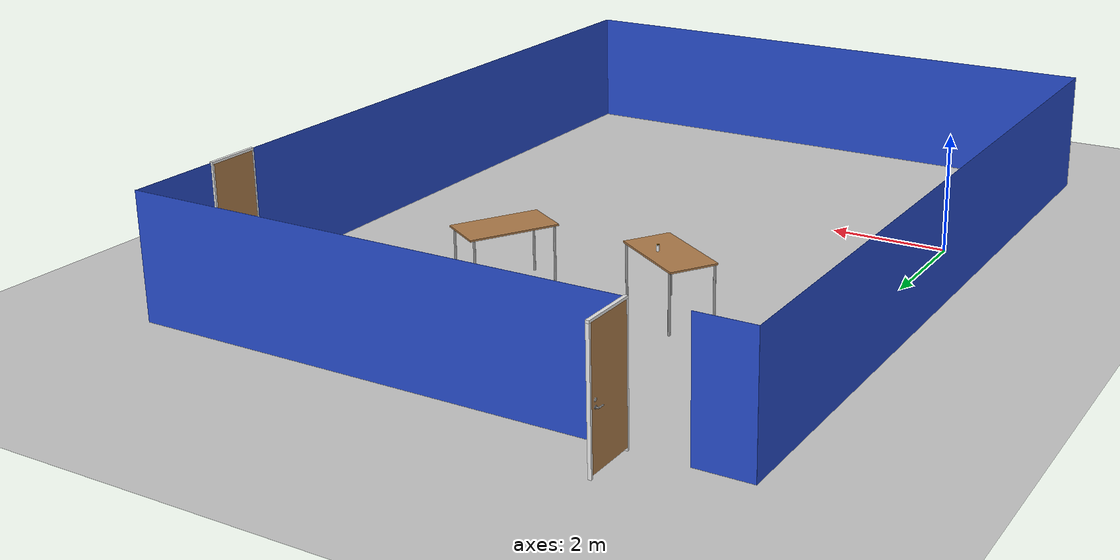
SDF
<sdf version="1.6">
 <world name="default">
  <light name="sun" type="directional">
   <pose>0 0 10 0 -0 0</pose>
   <diffuse>0.8 0.8 0.8 1</diffuse>
   <specular>0.2 0.2 0.2 1</specular>
   <attenuation>
    <range>1000</range>
    <constant>0.9</constant>
    <linear>0.01</linear>
    <quadratic>0.001</quadratic>
   </attenuation>
   <direction>-0.5 0.1 -0.9</direction>
  </light>
  <model name="ground_plane">
   <static>1</static>
   <link name="link">
    <collision name="collision">
     <geometry><plane><normal>0 0 1</normal><size>100 100</size></plane></geometry>
     <surface><friction><ode><mu>100</mu><mu2>50</mu2></ode></friction></surface>
    </collision>
    <visual name="visual">
     <cast_shadows>0</cast_shadows>
     <geometry><plane><normal>0 0 1</normal><size>100 100</size></plane></geometry>
     <material>
      <script><uri>file://media/materials/scripts/gazebo.material</uri><name>Gazebo/Grey</name></script>
     </material>
    </visual>
   </link>
  </model>
  <gravity>0 0 -9.8</gravity>
  <magnetic_field>6e-06 2.3e-05 -4.2e-05</magnetic_field>
  <atmosphere type="adiabatic"/>
  <physics name="default_physics" default="0" type="ode">
   <max_step_size>0.001</max_step_size>
   <real_time_factor>1</real_time_factor>
   <real_time_update_rate>1000</real_time_update_rate>
  </physics>
  <scene><ambient>0.4 0.4 0.4 1</ambient><background>0.7 0.7 0.7 1</background><shadows>1</shadows></scene>
  <spherical_coordinates>
   <surface_model>EARTH_WGS84</surface_model>
   <latitude_deg>0</latitude_deg>
   <longitude_deg>0</longitude_deg>
   <elevation>0</elevation>
   <heading_deg>0</heading_deg>
  </spherical_coordinates>
  <model name="apartment_wall_collision">
   <link name="link">
    <inertial>
     <mass>50</mass>
     <inertia><ixx>1</ixx><ixy>0</ixy><ixz>0</ixz><iyy>1</iyy><iyz>0</iyz><izz>1</izz></inertia>
    </inertial>
    <visual name="wall_x00y00_x00y15">
     <pose>-0.002 6.59 1.04 0 -0 0</pose>
     <geometry><box><size>0.002 13.2 2.08</size></box></geometry>
     <material>
      <script>
       <uri>model://base_materials/color/scripts</uri>
       <name>hsr_color/cornflowerblue_transparency1</name>
      </script>
     </material>
    </visual>
    <collision name="wall_x00y00_x00y15">
     <pose>-0.002 6.59 1.04 0 -0 0</pose>
     <geometry><box><size>0.002 13.2 2.08</size></box></geometry>
    </collision>
    <visual name="wall_x00y00_x13y00">
     <pose>5.0375 -0.002 1.04 0 -0 0</pose>
     <geometry><box><size>10.08 0.002 2.08</size></box></geometry>
     <material>
      <script>
       <uri>model://base_materials/color/scripts</uri>
       <name>hsr_color/cornflowerblue_transparency1</name>
      </script>
     </material>
    </visual>
    <collision name="wall_x00y00_x13y00">
     <pose>5.0375 -0.002 1.04 0 -0 0</pose>
     <geometry><box><size>10.08 0.002 2.08</size></box></geometry>
    </collision>
    <visual name="wall_x13y00_x13y12">
     <pose>10.077 5.42 1.04 0 -0 0</pose>
     <geometry><box><size>0.002 10.84 2.08</size></box></geometry>
     <material>
      <script>
       <uri>model://base_materials/color/scripts</uri>
       <name>hsr_color/cornflowerblue_transparency1</name>
      </script>
     </material>
    </visual>
    <collision name="wall_x13y00_x13y12">
     <pose>10.077 5.42 1.04 0 -0 0</pose>
     <geometry><box><size>0.002 10.84 2.08</size></box></geometry>
    </collision>
    <visual name="wall_x13y14_x13y16">
     <pose>10.077 12.43 1.04 0 -0 0</pose>
     <geometry><box><size>0.002 1.5 2.08</size></box></geometry>
     <material>
      <script>
       <uri>model://base_materials/color/scripts</uri>
       <name>hsr_color/cornflowerblue_transparency1</name>
      </script>
     </material>
    </visual>
    <collision name="wall_x13y14_x13y16">
     <pose>10.077 12.43 1.04 0 -0 0</pose>
     <geometry><box><size>0.002 1.5 2.08</size></box></geometry>
    </collision>
    <visual name="wall_x00y16_x01y16">
     <pose>0.4525 13.182 1.04 0 -0 0</pose>
     <geometry><box><size>0.904 0.002 2.08</size></box></geometry>
     <material>
      <script>
       <uri>model://base_materials/color/scripts</uri>
       <name>hsr_color/cornflowerblue_transparency1</name>
      </script>
     </material>
    </visual>
    <collision name="wall_x00y16_x01y16">
     <pose>0.4525 13.182 1.04 0 -0 0</pose>
     <geometry><box><size>0.904 0.002 2.08</size></box></geometry>
    </collision>
    <visual name="wall_x03y16_x13y16">
     <pose>5.948 13.182 1.04 0 -0 0</pose>
     <geometry><box><size>8.3 0.002 2.08</size></box></geometry>
     <material>
      <script>
       <uri>model://base_materials/color/scripts</uri>
       <name>hsr_color/cornflowerblue_transparency1</name>
      </script>
     </material>
    </visual>
    <collision name="wall_x03y16_x13y16">
     <pose>5.948 13.182 1.04 0 -0 0</pose>
     <geometry><box><size>8.3 0.002 2.08</size></box></geometry>
    </collision>
    <velocity_decay><linear>0</linear><angular>0</angular></velocity_decay>
   </link>
   <static>1</static>
   <pose>-0.801401 -4.45282 0 0 -0 0</pose>
  </model>
  <model name="door_55_900_2090">
   <link name="link">
    <pose>0 0.45 0 0 -0 0</pose>
    <inertial>
     <mass>50</mass>
     <inertia><ixx>1</ixx><ixy>0</ixy><ixz>0</ixz><iyy>1</iyy><iyz>0</iyz><izz>1</izz></inertia>
    </inertial>
    <visual name="door">
     <pose>0 0 1.05 0 -0 0</pose>
     <geometry><box><size>0.055 0.83 2</size></box></geometry>
     <material>
      <script><uri>model://base_materials/wood/scripts/wood.material</uri><name>base_materials/wood</name></script>
     </material>
    </visual>
    <collision name="collision_door">
     <pose>0 0 1.05 0 -0 0</pose>
     <geometry><box><size>0.055 0.83 2</size></box></geometry>
    </collision>
    <visual name="right_frame">
     <pose>0 0.4325 1.025 0 -0 0</pose>
     <geometry><box><size>0.055 0.035 2.05</size></box></geometry>
     <material>
      <script><uri>model://base_materials/color/scripts</uri><name>hsr_color/white</name></script>
     </material>
    </visual>
    <collision name="collision_right_frame">
     <pose>0 0.4325 1.025 0 -0 0</pose>
     <geometry><box><size>0.055 0.035 2.05</size></box></geometry>
    </collision>
    <visual name="left_frame">
     <pose>0 -0.4325 1.025 0 -0 0</pose>
     <geometry><box><size>0.055 0.035 2.05</size></box></geometry>
     <material>
      <script><uri>model://base_materials/color/scripts</uri><name>hsr_color/white</name></script>
     </material>
    </visual>
    <collision name="collision_left_frame">
     <pose>0 -0.4325 1.025 0 -0 0</pose>
     <geometry><box><size>0.055 0.035 2.05</size></box></geometry>
    </collision>
    <visual name="top_frame">
     <pose>0 0 2.07 0 -0 0</pose>
     <geometry><box><size>0.055 0.9 0.04</size></box></geometry>
     <material>
      <script><uri>model://base_materials/color/scripts</uri><name>hsr_color/white</name></script>
     </material>
    </visual>
    <collision name="collision_top_frame">
     <pose>0 0 2.07 0 -0 0</pose>
     <geometry><box><size>0.055 0.9 0.04</size></box></geometry>
    </collision>
    <visual name="handle_front">
     <pose>0.0775 0.285 0.93 1.5708 -0 0</pose>
     <geometry><cylinder><radius>0.01</radius><length>0.1</length></cylinder></geometry>
     <material>
      <script><uri>model://base_materials/color/scripts</uri><name>hsr_color/grey</name></script>
     </material>
    </visual>
    <collision name="collision_handle_front">
     <pose>0.0775 0.285 0.93 1.5708 -0 0</pose>
     <geometry><cylinder><radius>0.01</radius><length>0.1</length></cylinder></geometry>
    </collision>
    <visual name="handle_back">
     <pose>-0.0775 0.285 0.93 1.5708 -0 0</pose>
     <geometry><cylinder><radius>0.01</radius><length>0.1</length></cylinder></geometry>
     <material>
      <script><uri>model://base_materials/color/scripts</uri><name>hsr_color/grey</name></script>
     </material>
    </visual>
    <collision name="collision_handle_back">
     <pose>-0.0775 0.285 0.93 1.5708 -0 0</pose>
     <geometry><cylinder><radius>0.01</radius><length>0.1</length></cylinder></geometry>
    </collision>
    <visual name="handle_center1">
     <pose>0 0.335 0.93 3.14159 1.57079 3.14159</pose>
     <geometry><cylinder><radius>0.01</radius><length>0.155</length></cylinder></geometry>
     <material>
      <script><uri>model://base_materials/color/scripts</uri><name>hsr_color/grey</name></script>
     </material>
    </visual>
    <collision name="collision_center1">
     <pose>0 0.335 0.93 3.14159 1.57079 3.14159</pose>
     <geometry><cylinder><radius>0.01</radius><length>0.155</length></cylinder></geometry>
    </collision>
    <visual name="handle_center2">
     <pose>0 0.335 0.93 3.14159 1.57079 3.14159</pose>
     <geometry><cylinder><radius>0.025</radius><length>0.075</length></cylinder></geometry>
     <material>
      <script><uri>model://base_materials/color/scripts</uri><name>hsr_color/grey</name></script>
     </material>
    </visual>
    <collision name="collision_center1">
     <pose>0 0.335 0.93 3.14159 1.57079 3.14159</pose>
     <geometry><cylinder><radius>0.025</radius><length>0.075</length></cylinder></geometry>
    </collision>
    <visual name="handle_front_right_corner">
     <pose>0.0775 0.335 0.93 0 -0 0</pose>
     <geometry><sphere><radius>0.01</radius></sphere></geometry>
     <material>
      <script><uri>model://base_materials/color/scripts</uri><name>hsr_color/grey</name></script>
     </material>
    </visual>
    <collision name="collision_handle_front_right_corner">
     <pose>0.0775 0.335 0.93 0 -0 0</pose>
     <geometry><sphere><radius>0.01</radius></sphere></geometry>
    </collision>
    <visual name="handle_front_left_corner">
     <pose>0.0775 0.235 0.93 0 -0 0</pose>
     <geometry><sphere><radius>0.01</radius></sphere></geometry>
     <material>
      <script><uri>model://base_materials/color/scripts</uri><name>hsr_color/grey</name></script>
     </material>
    </visual>
    <collision name="collision_handle_front_left_corner">
     <pose>0.0775 0.235 0.93 0 -0 0</pose>
     <geometry><sphere><radius>0.01</radius></sphere></geometry>
    </collision>
    <visual name="handle_back_right_corner">
     <pose>-0.0775 0.335 0.93 0 -0 0</pose>
     <geometry><sphere><radius>0.01</radius></sphere></geometry>
     <material>
      <script><uri>model://base_materials/color/scripts</uri><name>hsr_color/grey</name></script>
     </material>
    </visual>
    <collision name="collision_handle_back_right_corner">
     <pose>-0.0775 0.335 0.93 0 -0 0</pose>
     <geometry><sphere><radius>0.01</radius></sphere></geometry>
    </collision>
    <visual name="handle_back_left_corner">
     <pose>-0.0775 0.235 0.93 0 -0 0</pose>
     <geometry><sphere><radius>0.01</radius></sphere></geometry>
     <material>
      <script><uri>model://base_materials/color/scripts</uri><name>hsr_color/white</name></script>
     </material>
    </visual>
    <collision name="collision_handle_back_left_corner">
     <pose>-0.0775 0.235 0.93 0 -0 0</pose>
     <geometry><sphere><radius>0.01</radius></sphere></geometry>
    </collision>
    <visual name="handle_lock1">
     <pose>0 0.335 1.03 0 -0 0</pose>
     <geometry><box><size>0.075 0.005 0.04</size></box></geometry>
     <material>
      <script><uri>model://base_materials/color/scripts</uri><name>hsr_color/white</name></script>
     </material>
    </visual>
    <collision name="collision_handle_lock1">
     <pose>0 0.335 1.03 0 -0 0</pose>
     <geometry><box><size>0.075 0.005 0.04</size></box></geometry>
    </collision>
    <visual name="handle_lock2">
     <pose>0 0.335 1.03 3.14159 1.57079 3.14159</pose>
     <geometry><cylinder><radius>0.025</radius><length>0.065</length></cylinder></geometry>
     <material>
      <script><uri>model://base_materials/color/scripts</uri><name>hsr_color/white</name></script>
     </material>
    </visual>
    <collision name="collision_handle_lock1">
     <pose>0 0.335 1.03 3.14159 1.57079 3.14159</pose>
     <geometry><cylinder><radius>0.025</radius><length>0.065</length></cylinder></geometry>
    </collision>
    <velocity_decay><linear>0</linear><angular>0</angular></velocity_decay>
   </link>
   <static>1</static>
   <pose>9.28249 6.31337 0 0 -0 0</pose>
  </model>
  <model name="door_55_900_2090_0">
   <link name="link">
    <pose>0 0.45 0 0 -0 0</pose>
    <inertial>
     <mass>50</mass>
     <inertia><ixx>1</ixx><ixy>0</ixy><ixz>0</ixz><iyy>1</iyy><iyz>0</iyz><izz>1</izz></inertia>
    </inertial>
    <visual name="door">
     <pose>0 0 1.05 0 -0 0</pose>
     <geometry><box><size>0.055 0.83 2</size></box></geometry>
     <material>
      <script><uri>model://base_materials/wood/scripts/wood.material</uri><name>base_materials/wood</name></script>
     </material>
    </visual>
    <collision name="collision_door">
     <pose>0 0 1.05 0 -0 0</pose>
     <geometry><box><size>0.055 0.83 2</size></box></geometry>
    </collision>
    <visual name="right_frame">
     <pose>0 0.4325 1.025 0 -0 0</pose>
     <geometry><box><size>0.055 0.035 2.05</size></box></geometry>
     <material>
      <script><uri>model://base_materials/color/scripts</uri><name>hsr_color/white</name></script>
     </material>
    </visual>
    <collision name="collision_right_frame">
     <pose>0 0.4325 1.025 0 -0 0</pose>
     <geometry><box><size>0.055 0.035 2.05</size></box></geometry>
    </collision>
    <visual name="left_frame">
     <pose>0 -0.4325 1.025 0 -0 0</pose>
     <geometry><box><size>0.055 0.035 2.05</size></box></geometry>
     <material>
      <script><uri>model://base_materials/color/scripts</uri><name>hsr_color/white</name></script>
     </material>
    </visual>
    <collision name="collision_left_frame">
     <pose>0 -0.4325 1.025 0 -0 0</pose>
     <geometry><box><size>0.055 0.035 2.05</size></box></geometry>
    </collision>
    <visual name="top_frame">
     <pose>0 0 2.07 0 -0 0</pose>
     <geometry><box><size>0.055 0.9 0.04</size></box></geometry>
     <material>
      <script><uri>model://base_materials/color/scripts</uri><name>hsr_color/white</name></script>
     </material>
    </visual>
    <collision name="collision_top_frame">
     <pose>0 0 2.07 0 -0 0</pose>
     <geometry><box><size>0.055 0.9 0.04</size></box></geometry>
    </collision>
    <visual name="handle_front">
     <pose>0.0775 0.285 0.93 1.5708 -0 0</pose>
     <geometry><cylinder><radius>0.01</radius><length>0.1</length></cylinder></geometry>
     <material>
      <script><uri>model://base_materials/color/scripts</uri><name>hsr_color/grey</name></script>
     </material>
    </visual>
    <collision name="collision_handle_front">
     <pose>0.0775 0.285 0.93 1.5708 -0 0</pose>
     <geometry><cylinder><radius>0.01</radius><length>0.1</length></cylinder></geometry>
    </collision>
    <visual name="handle_back">
     <pose>-0.0775 0.285 0.93 1.5708 -0 0</pose>
     <geometry><cylinder><radius>0.01</radius><length>0.1</length></cylinder></geometry>
     <material>
      <script><uri>model://base_materials/color/scripts</uri><name>hsr_color/grey</name></script>
     </material>
    </visual>
    <collision name="collision_handle_back">
     <pose>-0.0775 0.285 0.93 1.5708 -0 0</pose>
     <geometry><cylinder><radius>0.01</radius><length>0.1</length></cylinder></geometry>
    </collision>
    <visual name="handle_center1">
     <pose>0 0.335 0.93 3.14159 1.57079 3.14159</pose>
     <geometry><cylinder><radius>0.01</radius><length>0.155</length></cylinder></geometry>
     <material>
      <script><uri>model://base_materials/color/scripts</uri><name>hsr_color/grey</name></script>
     </material>
    </visual>
    <collision name="collision_center1">
     <pose>0 0.335 0.93 3.14159 1.57079 3.14159</pose>
     <geometry><cylinder><radius>0.01</radius><length>0.155</length></cylinder></geometry>
    </collision>
    <visual name="handle_center2">
     <pose>0 0.335 0.93 3.14159 1.57079 3.14159</pose>
     <geometry><cylinder><radius>0.025</radius><length>0.075</length></cylinder></geometry>
     <material>
      <script><uri>model://base_materials/color/scripts</uri><name>hsr_color/grey</name></script>
     </material>
    </visual>
    <collision name="collision_center1">
     <pose>0 0.335 0.93 3.14159 1.57079 3.14159</pose>
     <geometry><cylinder><radius>0.025</radius><length>0.075</length></cylinder></geometry>
    </collision>
    <visual name="handle_front_right_corner">
     <pose>0.0775 0.335 0.93 0 -0 0</pose>
     <geometry><sphere><radius>0.01</radius></sphere></geometry>
     <material>
      <script><uri>model://base_materials/color/scripts</uri><name>hsr_color/grey</name></script>
     </material>
    </visual>
    <collision name="collision_handle_front_right_corner">
     <pose>0.0775 0.335 0.93 0 -0 0</pose>
     <geometry><sphere><radius>0.01</radius></sphere></geometry>
    </collision>
    <visual name="handle_front_left_corner">
     <pose>0.0775 0.235 0.93 0 -0 0</pose>
     <geometry><sphere><radius>0.01</radius></sphere></geometry>
     <material>
      <script><uri>model://base_materials/color/scripts</uri><name>hsr_color/grey</name></script>
     </material>
    </visual>
    <collision name="collision_handle_front_left_corner">
     <pose>0.0775 0.235 0.93 0 -0 0</pose>
     <geometry><sphere><radius>0.01</radius></sphere></geometry>
    </collision>
    <visual name="handle_back_right_corner">
     <pose>-0.0775 0.335 0.93 0 -0 0</pose>
     <geometry><sphere><radius>0.01</radius></sphere></geometry>
     <material>
      <script><uri>model://base_materials/color/scripts</uri><name>hsr_color/grey</name></script>
     </material>
    </visual>
    <collision name="collision_handle_back_right_corner">
     <pose>-0.0775 0.335 0.93 0 -0 0</pose>
     <geometry><sphere><radius>0.01</radius></sphere></geometry>
    </collision>
    <visual name="handle_back_left_corner">
     <pose>-0.0775 0.235 0.93 0 -0 0</pose>
     <geometry><sphere><radius>0.01</radius></sphere></geometry>
     <material>
      <script><uri>model://base_materials/color/scripts</uri><name>hsr_color/white</name></script>
     </material>
    </visual>
    <collision name="collision_handle_back_left_corner">
     <pose>-0.0775 0.235 0.93 0 -0 0</pose>
     <geometry><sphere><radius>0.01</radius></sphere></geometry>
    </collision>
    <visual name="handle_lock1">
     <pose>0 0.335 1.03 0 -0 0</pose>
     <geometry><box><size>0.075 0.005 0.04</size></box></geometry>
     <material>
      <script><uri>model://base_materials/color/scripts</uri><name>hsr_color/white</name></script>
     </material>
    </visual>
    <collision name="collision_handle_lock1">
     <pose>0 0.335 1.03 0 -0 0</pose>
     <geometry><box><size>0.075 0.005 0.04</size></box></geometry>
    </collision>
    <visual name="handle_lock2">
     <pose>0 0.335 1.03 3.14159 1.57079 3.14159</pose>
     <geometry><cylinder><radius>0.025</radius><length>0.065</length></cylinder></geometry>
     <material>
      <script><uri>model://base_materials/color/scripts</uri><name>hsr_color/white</name></script>
     </material>
    </visual>
    <collision name="collision_handle_lock1">
     <pose>0 0.335 1.03 3.14159 1.57079 3.14159</pose>
     <geometry><cylinder><radius>0.025</radius><length>0.065</length></cylinder></geometry>
    </collision>
    <velocity_decay><linear>0</linear><angular>0</angular></velocity_decay>
   </link>
   <static>1</static>
   <pose>1.01258 8.7111 0 0 -0 0</pose>
  </model>
  <model name="bookshelf">
   <static>1</static>
   <link name="link">
    <inertial><mass>1</mass></inertial>
    <collision name="back">
     <pose>0 0.005 0.6 0 -0 0</pose>
     <geometry><box><size>0.9 0.01 1.2</size></box></geometry>
    </collision>
    <visual name="visual1">
     <pose>0 0.005 0.6 0 -0 0</pose>
     <geometry><box><size>0.9 0.01 1.2</size></box></geometry>
     <material>
      <script><uri>file://media/materials/scripts/gazebo.material</uri><name>Gazebo/Wood</name></script>
     </material>
    </visual>
    <collision name="left_side">
     <pose>0.45 -0.195 0.6 0 -0 0</pose>
     <geometry><box><size>0.02 0.4 1.2</size></box></geometry>
    </collision>
    <visual name="visual2">
     <pose>0.45 -0.195 0.6 0 -0 0</pose>
     <geometry><box><size>0.02 0.4 1.2</size></box></geometry>
     <material>
      <script><uri>file://media/materials/scripts/gazebo.material</uri><name>Gazebo/Wood</name></script>
     </material>
    </visual>
    <collision name="right_side">
     <pose>-0.45 -0.195 0.6 0 -0 0</pose>
     <geometry><box><size>0.02 0.4 1.2</size></box></geometry>
    </collision>
    <visual name="visual3">
     <pose>-0.45 -0.195 0.6 0 -0 0</pose>
     <geometry><box><size>0.02 0.4 1.2</size></box></geometry>
     <material>
      <script><uri>file://media/materials/scripts/gazebo.material</uri><name>Gazebo/Wood</name></script>
     </material>
    </visual>
    <collision name="bottom">
     <pose>0 -0.195 0.03 0 -0 0</pose>
     <geometry><box><size>0.88 0.4 0.06</size></box></geometry>
    </collision>
    <visual name="visual4">
     <pose>0 -0.195 0.03 0 -0 0</pose>
     <geometry><box><size>0.88 0.4 0.06</size></box></geometry>
     <material>
      <script><uri>file://media/materials/scripts/gazebo.material</uri><name>Gazebo/Wood</name></script>
     </material>
    </visual>
    <collision name="top">
     <pose>0 -0.195 1.19 0 -0 0</pose>
     <geometry><box><size>0.88 0.4 0.02</size></box></geometry>
    </collision>
    <visual name="visual5">
     <pose>0 -0.195 1.19 0 -0 0</pose>
     <geometry><box><size>0.88 0.4 0.02</size></box></geometry>
     <material>
      <script><uri>file://media/materials/scripts/gazebo.material</uri><name>Gazebo/Wood</name></script>
     </material>
    </visual>
    <collision name="low_shelf">
     <pose>0 -0.195 0.43 0 -0 0</pose>
     <geometry><box><size>0.88 0.4 0.02</size></box></geometry>
    </collision>
    <visual name="visual6">
     <pose>0 -0.195 0.43 0 -0 0</pose>
     <geometry><box><size>0.88 0.4 0.02</size></box></geometry>
     <material>
      <script><uri>file://media/materials/scripts/gazebo.material</uri><name>Gazebo/Wood</name></script>
     </material>
    </visual>
    <collision name="high_shelf">
     <pose>0 -0.195 0.8 0 -0 0</pose>
     <geometry><box><size>0.88 0.4 0.02</size></box></geometry>
    </collision>
    <visual name="visual7">
     <pose>0 -0.195 0.8 0 -0 0</pose>
     <geometry><box><size>0.88 0.4 0.02</size></box></geometry>
     <material>
      <script><uri>file://media/materials/scripts/gazebo.material</uri><name>Gazebo/Wood</name></script>
     </material>
    </visual>
   </link>
   <pose>3.30797 8.67981 0 0 -0 0</pose>
  </model>
  <model name="table">
   <static>1</static>
   <link name="link">
    <collision name="surface">
     <pose>0 0 1 0 -0 0</pose>
     <geometry><box><size>1.5 0.8 0.03</size></box></geometry>
     <surface><friction><ode><mu>0.6</mu><mu2>0.6</mu2></ode></friction></surface>
    </collision>
    <visual name="visual1">
     <pose>0 0 1 0 -0 0</pose>
     <geometry><box><size>1.5 0.8 0.03</size></box></geometry>
     <material>
      <script><uri>file://media/materials/scripts/gazebo.material</uri><name>Gazebo/Wood</name></script>
     </material>
    </visual>
    <collision name="front_left_leg">
     <pose>0.68 0.38 0.5 0 -0 0</pose>
     <geometry><cylinder><radius>0.02</radius><length>1</length></cylinder></geometry>
    </collision>
    <visual name="front_left_leg">
     <pose>0.68 0.38 0.5 0 -0 0</pose>
     <geometry><cylinder><radius>0.02</radius><length>1</length></cylinder></geometry>
     <material>
      <script><uri>file://media/materials/scripts/gazebo.material</uri><name>Gazebo/Grey</name></script>
     </material>
    </visual>
    <collision name="front_right_leg">
     <pose>0.68 -0.38 0.5 0 -0 0</pose>
     <geometry><cylinder><radius>0.02</radius><length>1</length></cylinder></geometry>
    </collision>
    <visual name="front_right_leg">
     <pose>0.68 -0.38 0.5 0 -0 0</pose>
     <geometry><cylinder><radius>0.02</radius><length>1</length></cylinder></geometry>
     <material>
      <script><uri>file://media/materials/scripts/gazebo.material</uri><name>Gazebo/Grey</name></script>
     </material>
    </visual>
    <collision name="back_right_leg">
     <pose>-0.68 -0.38 0.5 0 -0 0</pose>
     <geometry><cylinder><radius>0.02</radius><length>1</length></cylinder></geometry>
    </collision>
    <visual name="back_right_leg">
     <pose>-0.68 -0.38 0.5 0 -0 0</pose>
     <geometry><cylinder><radius>0.02</radius><length>1</length></cylinder></geometry>
     <material>
      <script><uri>file://media/materials/scripts/gazebo.material</uri><name>Gazebo/Grey</name></script>
     </material>
    </visual>
    <collision name="back_left_leg">
     <pose>-0.68 0.38 0.5 0 -0 0</pose>
     <geometry><cylinder><radius>0.02</radius><length>1</length></cylinder></geometry>
    </collision>
    <visual name="back_left_leg">
     <pose>-0.68 0.38 0.5 0 -0 0</pose>
     <geometry><cylinder><radius>0.02</radius><length>1</length></cylinder></geometry>
     <material>
      <script><uri>file://media/materials/scripts/gazebo.material</uri><name>Gazebo/Grey</name></script>
     </material>
    </visual>
   </link>
   <pose>2.65807 4.66442 0 0.000136 -0 -0.566606</pose>
  </model>
  <model name="bookshelf_clone">
   <static>1</static>
   <link name="link">
    <inertial><mass>1</mass></inertial>
    <collision name="back">
     <pose>0 0.005 0.6 0 -0 0</pose>
     <geometry><box><size>0.9 0.01 1.2</size></box></geometry>
    </collision>
    <visual name="visual1">
     <pose>0 0.005 0.6 0 -0 0</pose>
     <geometry><box><size>0.9 0.01 1.2</size></box></geometry>
     <material>
      <script><uri>file://media/materials/scripts/gazebo.material</uri><name>Gazebo/Wood</name></script>
     </material>
    </visual>
    <collision name="left_side">
     <pose>0.45 -0.195 0.6 0 -0 0</pose>
     <geometry><box><size>0.02 0.4 1.2</size></box></geometry>
    </collision>
    <visual name="visual2">
     <pose>0.45 -0.195 0.6 0 -0 0</pose>
     <geometry><box><size>0.02 0.4 1.2</size></box></geometry>
     <material>
      <script><uri>file://media/materials/scripts/gazebo.material</uri><name>Gazebo/Wood</name></script>
     </material>
    </visual>
    <collision name="right_side">
     <pose>-0.45 -0.195 0.6 0 -0 0</pose>
     <geometry><box><size>0.02 0.4 1.2</size></box></geometry>
    </collision>
    <visual name="visual3">
     <pose>-0.45 -0.195 0.6 0 -0 0</pose>
     <geometry><box><size>0.02 0.4 1.2</size></box></geometry>
     <material>
      <script><uri>file://media/materials/scripts/gazebo.material</uri><name>Gazebo/Wood</name></script>
     </material>
    </visual>
    <collision name="bottom">
     <pose>0 -0.195 0.03 0 -0 0</pose>
     <geometry><box><size>0.88 0.4 0.06</size></box></geometry>
    </collision>
    <visual name="visual4">
     <pose>0 -0.195 0.03 0 -0 0</pose>
     <geometry><box><size>0.88 0.4 0.06</size></box></geometry>
     <material>
      <script><uri>file://media/materials/scripts/gazebo.material</uri><name>Gazebo/Wood</name></script>
     </material>
    </visual>
    <collision name="top">
     <pose>0 -0.195 1.19 0 -0 0</pose>
     <geometry><box><size>0.88 0.4 0.02</size></box></geometry>
    </collision>
    <visual name="visual5">
     <pose>0 -0.195 1.19 0 -0 0</pose>
     <geometry><box><size>0.88 0.4 0.02</size></box></geometry>
     <material>
      <script><uri>file://media/materials/scripts/gazebo.material</uri><name>Gazebo/Wood</name></script>
     </material>
    </visual>
    <collision name="low_shelf">
     <pose>0 -0.195 0.43 0 -0 0</pose>
     <geometry><box><size>0.88 0.4 0.02</size></box></geometry>
    </collision>
    <visual name="visual6">
     <pose>0 -0.195 0.43 0 -0 0</pose>
     <geometry><box><size>0.88 0.4 0.02</size></box></geometry>
     <material>
      <script><uri>file://media/materials/scripts/gazebo.material</uri><name>Gazebo/Wood</name></script>
     </material>
    </visual>
    <collision name="high_shelf">
     <pose>0 -0.195 0.8 0 -0 0</pose>
     <geometry><box><size>0.88 0.4 0.02</size></box></geometry>
    </collision>
    <visual name="visual7">
     <pose>0 -0.195 0.8 0 -0 0</pose>
     <geometry><box><size>0.88 0.4 0.02</size></box></geometry>
     <material>
      <script><uri>file://media/materials/scripts/gazebo.material</uri><name>Gazebo/Wood</name></script>
     </material>
    </visual>
   </link>
   <pose>4.95546 8.71674 0 0 -0 0</pose>
  </model>
  <model name="table_0">
   <static>1</static>
   <link name="link">
    <collision name="surface">
     <pose>0 0 1 0 -0 0</pose>
     <geometry><box><size>1.5 0.8 0.03</size></box></geometry>
     <surface><friction><ode><mu>0.6</mu><mu2>0.6</mu2></ode></friction></surface>
    </collision>
    <visual name="visual1">
     <pose>0 0 1 0 -0 0</pose>
     <geometry><box><size>1.5 0.8 0.03</size></box></geometry>
     <material>
      <script><uri>file://media/materials/scripts/gazebo.material</uri><name>Gazebo/Wood</name></script>
     </material>
    </visual>
    <collision name="front_left_leg">
     <pose>0.68 0.38 0.5 0 -0 0</pose>
     <geometry><cylinder><radius>0.02</radius><length>1</length></cylinder></geometry>
    </collision>
    <visual name="front_left_leg">
     <pose>0.68 0.38 0.5 0 -0 0</pose>
     <geometry><cylinder><radius>0.02</radius><length>1</length></cylinder></geometry>
     <material>
      <script><uri>file://media/materials/scripts/gazebo.material</uri><name>Gazebo/Grey</name></script>
     </material>
    </visual>
    <collision name="front_right_leg">
     <pose>0.68 -0.38 0.5 0 -0 0</pose>
     <geometry><cylinder><radius>0.02</radius><length>1</length></cylinder></geometry>
    </collision>
    <visual name="front_right_leg">
     <pose>0.68 -0.38 0.5 0 -0 0</pose>
     <geometry><cylinder><radius>0.02</radius><length>1</length></cylinder></geometry>
     <material>
      <script><uri>file://media/materials/scripts/gazebo.material</uri><name>Gazebo/Grey</name></script>
     </material>
    </visual>
    <collision name="back_right_leg">
     <pose>-0.68 -0.38 0.5 0 -0 0</pose>
     <geometry><cylinder><radius>0.02</radius><length>1</length></cylinder></geometry>
    </collision>
    <visual name="back_right_leg">
     <pose>-0.68 -0.38 0.5 0 -0 0</pose>
     <geometry><cylinder><radius>0.02</radius><length>1</length></cylinder></geometry>
     <material>
      <script><uri>file://media/materials/scripts/gazebo.material</uri><name>Gazebo/Grey</name></script>
     </material>
    </visual>
    <collision name="back_left_leg">
     <pose>-0.68 0.38 0.5 0 -0 0</pose>
     <geometry><cylinder><radius>0.02</radius><length>1</length></cylinder></geometry>
    </collision>
    <visual name="back_left_leg">
     <pose>-0.68 0.38 0.5 0 -0 0</pose>
     <geometry><cylinder><radius>0.02</radius><length>1</length></cylinder></geometry>
     <material>
      <script><uri>file://media/materials/scripts/gazebo.material</uri><name>Gazebo/Grey</name></script>
     </material>
    </visual>
   </link>
   <pose>5.49589 4.88434 0 0 0 -2.1057</pose>
  </model>
  <model name="small_bottle">
   <link name="link">
    <inertial>
     <mass>0.05</mass>
     <inertia><ixx>0.00058</ixx><ixy>0</ixy><ixz>0</ixz><iyy>0.00058</iyy><iyz>0</iyz><izz>0.00016</izz></inertia>
    </inertial>
    <visual name="top">
     <pose>0 0 0.0555 0 -0 0</pose>
     <geometry><cylinder><radius>0.019</radius><length>0.016</length></cylinder></geometry>
     <material>
      <ambient>1 0.647 0 1</ambient>
      <diffuse>0.5 0.3235 0 1</diffuse>
      <specular>0.1 0.1 0.1 1</specular>
      <emissive>0 0 0 0</emissive>
     </material>
    </visual>
    <collision name="collision_top">
     <pose>0 0 0.0555 0 -0 0</pose>
     <geometry><cylinder><radius>0.019</radius><length>0.016</length></cylinder></geometry>
     <surface>
      <bounce><restitution_coefficient>0.2</restitution_coefficient><threshold>0</threshold></bounce>
      <contact><ode><kp>10000</kp><max_vel>10</max_vel></ode></contact>
     </surface>
    </collision>
    <visual name="bottom">
     <geometry><cylinder><radius>0.0245</radius><length>0.095</length></cylinder></geometry>
     <material>
      <script><uri>model://base_materials/color/scripts</uri><name>hsr_color/white</name></script>
     </material>
    </visual>
    <collision name="collision_bottom">
     <geometry><cylinder><radius>0.0245</radius><length>0.095</length></cylinder></geometry>
     <surface>
      <bounce><restitution_coefficient>0.2</restitution_coefficient><threshold>0</threshold></bounce>
      <contact><ode><kp>100000</kp><max_vel>10</max_vel></ode></contact>
     </surface>
    </collision>
    <velocity_decay><linear>0</linear><angular>0</angular></velocity_decay>
   </link>
   <static>0</static>
   <pose>2.81326 4.75368 1.07513 0 -0 0</pose>
  </model>
 </world>
</sdf>
